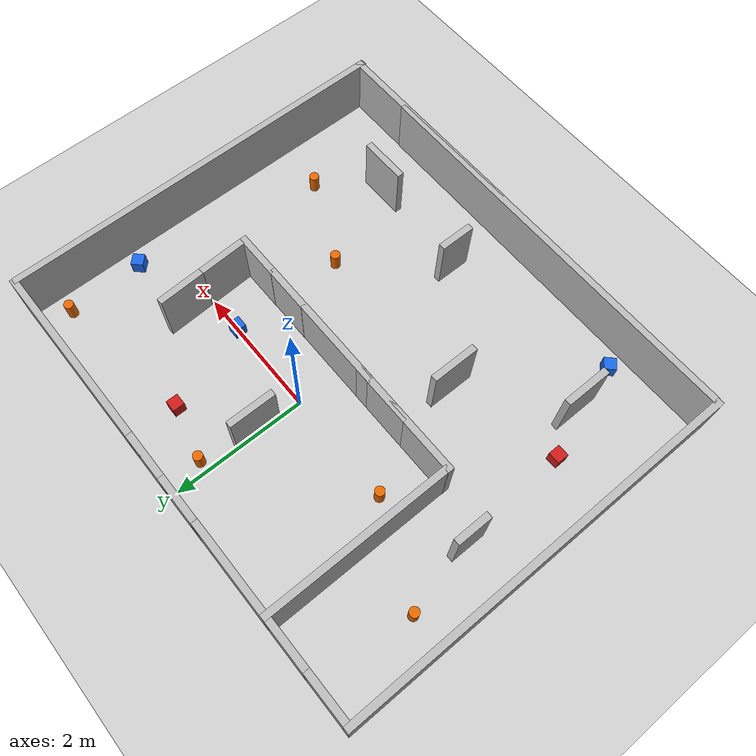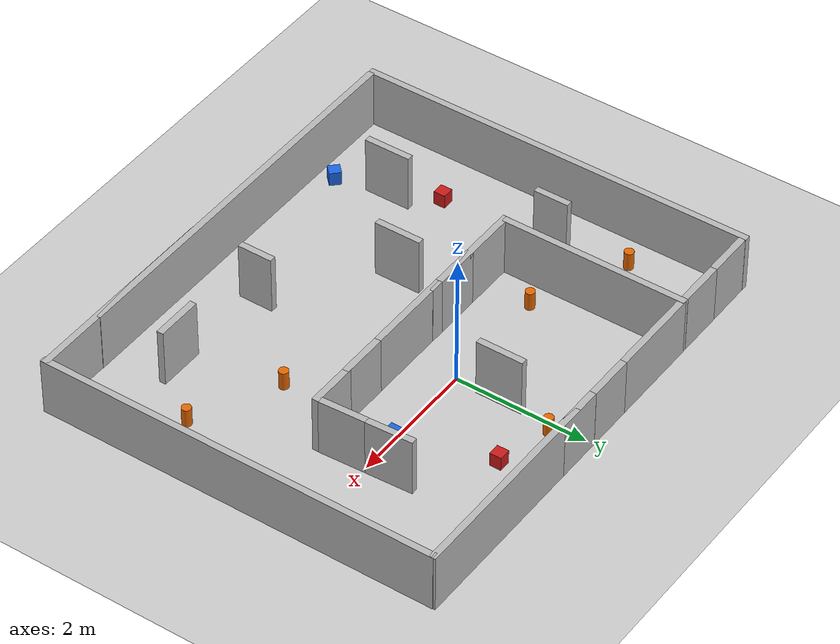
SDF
<sdf version="1.12">
 <world name="complex_maze">
  <physics name="1ms" type="ode">
   <max_step_size>0.001</max_step_size>
   <real_time_factor>1</real_time_factor>
   <real_time_update_rate>1000</real_time_update_rate>
   <max_contacts>20</max_contacts>
  </physics>
  <plugin name="gz::sim::systems::Physics" filename="gz-sim-physics-system"/>
  <plugin name="gz::sim::systems::UserCommands" filename="gz-sim-user-commands-system"/>
  <plugin name="gz::sim::systems::SceneBroadcaster" filename="gz-sim-scene-broadcaster-system"/>
  <plugin name="gz::sim::systems::Contact" filename="gz-sim-contact-system"/>
  <plugin name="gz::sim::systems::Sensors" filename="gz-sim-sensors-system">
   <render_engine>ogre2</render_engine>
  </plugin>
  <gravity>0 0 -9.8000000000000007</gravity>
  <magnetic_field>5.5644999999999998e-06 2.2875799999999999e-05 -4.2388400000000002e-05</magnetic_field>
  <atmosphere type="adiabatic"/>
  <scene>
   <ambient>0.400000006 0.400000006 0.400000006 1</ambient>
   <background>0.699999988 0.699999988 0.699999988 1</background>
   <shadows>true</shadows>
  </scene>
  <model name="ground_plane">
   <static>true</static>
   <link name="link">
    <collision name="collision">
     <geometry><plane><normal>0 0 1</normal><size>35.279999999999994 35.279999999999994</size></plane></geometry>
    </collision>
    <visual name="visual">
     <geometry><plane><normal>0 0 1</normal><size>35.279999999999994 35.279999999999994</size></plane></geometry>
     <material>
      <ambient>0.800000012 0.800000012 0.800000012 1</ambient>
      <diffuse>0.800000012 0.800000012 0.800000012 1</diffuse>
      <specular>0.800000012 0.800000012 0.800000012 1</specular>
     </material>
    </visual>
    <inertial>
     <mass>1</mass>
     <inertia><ixx>1</ixx><ixy>0</ixy><ixz>0</ixz><iyy>1</iyy><iyz>0</iyz><izz>1</izz></inertia>
    </inertial>
   </link>
  </model>
  <model name="wall_1">
   <static>true</static>
   <pose>-0.56639599800109863 -3.8974392414093018 0.44100001454353333 0 0 0</pose>
   <link name="link">
    <collision name="collision">
     <geometry><box><size>6.056 0.10000000000000001 0.88200000000000001</size></box></geometry>
    </collision>
    <visual name="visual">
     <geometry><box><size>6.056 0.10000000000000001 0.88200000000000001</size></box></geometry>
    </visual>
    <inertial>
     <mass>1</mass>
     <inertia><ixx>1</ixx><ixy>0</ixy><ixz>0</ixz><iyy>1</iyy><iyz>0</iyz><izz>1</izz></inertia>
    </inertial>
   </link>
  </model>
  <model name="wall_3">
   <static>true</static>
   <pose>-3.6227281093597412 -0.9127049446105957 0.44100001454353333 0 0 1.5708000357176291</pose>
   <link name="link">
    <collision name="collision">
     <geometry><box><size>6.056 0.10000000000000001 0.88200000000000001</size></box></geometry>
    </collision>
    <visual name="visual">
     <geometry><box><size>6.056 0.10000000000000001 0.88200000000000001</size></box></geometry>
    </visual>
    <inertial>
     <mass>1</mass>
     <inertia><ixx>1</ixx><ixy>0</ixy><ixz>0</ixz><iyy>1</iyy><iyz>0</iyz><izz>1</izz></inertia>
    </inertial>
   </link>
  </model>
  <model name="wall_4">
   <static>true</static>
   <pose>3.4836702346801758 -0.9444882869720459 0.44100001454353333 0 0 1.5708000357176291</pose>
   <link name="link">
    <collision name="collision">
     <geometry><box><size>6.056 0.10000000000000001 0.88200000000000001</size></box></geometry>
    </collision>
    <visual name="visual">
     <geometry><box><size>6.056 0.10000000000000001 0.88200000000000001</size></box></geometry>
    </visual>
    <inertial>
     <mass>1</mass>
     <inertia><ixx>1</ixx><ixy>0</ixy><ixz>0</ixz><iyy>1</iyy><iyz>0</iyz><izz>1</izz></inertia>
    </inertial>
   </link>
  </model>
  <model name="wall_5">
   <static>true</static>
   <pose>1.9448164701461792 -3.9030799865722656 0.44100001454353333 0 0 0</pose>
   <link name="link">
    <collision name="collision">
     <geometry><box><size>3.1752000000000002 0.10000000000000001 0.8819999999999999</size></box></geometry>
    </collision>
    <visual name="visual">
     <geometry><box><size>3.1752000000000002 0.10000000000000001 0.8819999999999999</size></box></geometry>
    </visual>
    <inertial>
     <mass>1</mass>
     <inertia><ixx>1</ixx><ixy>0</ixy><ixz>0</ixz><iyy>1</iyy><iyz>0</iyz><izz>1</izz></inertia>
    </inertial>
   </link>
  </model>
  <model name="wall_7">
   <static>true</static>
   <pose>-1.288527250289917 -0.70560002326965332 0.44100001454353333 0 0 0</pose>
   <link name="link">
    <collision name="collision">
     <geometry><box><size>1.7639999999999998 0.10000000000000001 0.8819999999999999</size></box></geometry>
    </collision>
    <visual name="visual">
     <geometry><box><size>1.7639999999999998 0.10000000000000001 0.8819999999999999</size></box></geometry>
    </visual>
    <inertial>
     <mass>1</mass>
     <inertia><ixx>1</ixx><ixy>0</ixy><ixz>0</ixz><iyy>1</iyy><iyz>0</iyz><izz>1</izz></inertia>
    </inertial>
   </link>
  </model>
  <model name="wall_8">
   <static>true</static>
   <pose>-0.97289999999999999 -0.7056 0.441 0 0 0</pose>
   <link name="link">
    <collision name="collision">
     <geometry><box><size>0.7056 0.10000000000000001 0.8819999999999999</size></box></geometry>
    </collision>
    <visual name="visual">
     <geometry><box><size>0.7056 0.10000000000000001 0.8819999999999999</size></box></geometry>
    </visual>
    <inertial>
     <mass>1</mass>
     <inertia><ixx>1</ixx><ixy>0</ixy><ixz>0</ixz><iyy>1</iyy><iyz>0</iyz><izz>1</izz></inertia>
    </inertial>
   </link>
  </model>
  <model name="wall_9">
   <static>true</static>
   <pose>1.1031 -0.7056 0.441 0 0 0</pose>
   <link name="link">
    <collision name="collision">
     <geometry><box><size>0.7056 0.10000000000000001 0.8819999999999999</size></box></geometry>
    </collision>
    <visual name="visual">
     <geometry><box><size>0.7056 0.10000000000000001 0.8819999999999999</size></box></geometry>
    </visual>
    <inertial>
     <mass>1</mass>
     <inertia><ixx>1</ixx><ixy>0</ixy><ixz>0</ixz><iyy>1</iyy><iyz>0</iyz><izz>1</izz></inertia>
    </inertial>
   </link>
  </model>
  <model name="wall_12">
   <static>true</static>
   <pose>-0.35850000381469727 2.0695314407348633 0.44100001454353333 0 0 0</pose>
   <link name="link">
    <collision name="collision">
     <geometry><box><size>0.7056 0.10000000000000001 0.8819999999999999</size></box></geometry>
    </collision>
    <visual name="visual">
     <geometry><box><size>0.7056 0.10000000000000001 0.8819999999999999</size></box></geometry>
    </visual>
    <inertial>
     <mass>1</mass>
     <inertia><ixx>1</ixx><ixy>0</ixy><ixz>0</ixz><iyy>1</iyy><iyz>0</iyz><izz>1</izz></inertia>
    </inertial>
   </link>
  </model>
  <model name="wall_16">
   <static>true</static>
   <pose>1.9404000043869019 2.0684654712677002 0.44100001454353333 0 0 0</pose>
   <link name="link">
    <collision name="collision">
     <geometry><box><size>3.1752000000000002 0.10000000000000001 0.8819999999999999</size></box></geometry>
    </collision>
    <visual name="visual">
     <geometry><box><size>3.1752000000000002 0.10000000000000001 0.8819999999999999</size></box></geometry>
    </visual>
    <inertial>
     <mass>1</mass>
     <inertia><ixx>1</ixx><ixy>0</ixy><ixz>0</ixz><iyy>1</iyy><iyz>0</iyz><izz>1</izz></inertia>
    </inertial>
   </link>
  </model>
  <model name="wall_17">
   <static>true</static>
   <pose>0.018981589004397392 0.69783550500869751 0.44100001454353333 0 0 1.5708000357176291</pose>
   <link name="link">
    <collision name="collision">
     <geometry><box><size>0.7056 0.10000000000000001 0.8819999999999999</size></box></geometry>
    </collision>
    <visual name="visual">
     <geometry><box><size>0.7056 0.10000000000000001 0.8819999999999999</size></box></geometry>
    </visual>
    <inertial>
     <mass>1</mass>
     <inertia><ixx>1</ixx><ixy>0</ixy><ixz>0</ixz><iyy>1</iyy><iyz>0</iyz><izz>1</izz></inertia>
    </inertial>
   </link>
  </model>
  <model name="wall_18">
   <static>true</static>
   <pose>-2.1168003082275391 0.70462048053741455 0.44100001454353333 0 0 1.5708000357176291</pose>
   <link name="link">
    <collision name="collision">
     <geometry><box><size>2.8224 0.10000000000000001 0.8819999999999999</size></box></geometry>
    </collision>
    <visual name="visual">
     <geometry><box><size>2.8224 0.10000000000000001 0.8819999999999999</size></box></geometry>
    </visual>
    <inertial>
     <mass>1</mass>
     <inertia><ixx>1</ixx><ixy>0</ixy><ixz>0</ixz><iyy>1</iyy><iyz>0</iyz><izz>1</izz></inertia>
    </inertial>
   </link>
  </model>
  <model name="wall_23">
   <static>true</static>
   <pose>0.056099999999999997 -0.70740000000000003 0.441 0 0 0</pose>
   <link name="link">
    <collision name="collision">
     <geometry><box><size>1.4112 0.10000000000000001 0.8819999999999999</size></box></geometry>
    </collision>
    <visual name="visual">
     <geometry><box><size>1.4112 0.10000000000000001 0.8819999999999999</size></box></geometry>
    </visual>
    <inertial>
     <mass>1</mass>
     <inertia><ixx>1</ixx><ixy>0</ixy><ixz>0</ixz><iyy>1</iyy><iyz>0</iyz><izz>1</izz></inertia>
    </inertial>
   </link>
  </model>
  <model name="wall_24">
   <static>true</static>
   <pose>-1.4111982583999634 2.0668833255767822 0.43754100799560547 0 0 3.1415900000000754</pose>
   <link name="link">
    <collision name="collision">
     <geometry><box><size>1.4112 0.10000000000000001 0.8819999999999999</size></box></geometry>
    </collision>
    <visual name="visual">
     <geometry><box><size>1.4112 0.10000000000000001 0.8819999999999999</size></box></geometry>
    </visual>
    <inertial>
     <mass>1</mass>
     <inertia><ixx>1</ixx><ixy>0</ixy><ixz>0</ixz><iyy>1</iyy><iyz>0</iyz><izz>1</izz></inertia>
    </inertial>
   </link>
  </model>
  <model name="wall_25">
   <static>true</static>
   <pose>-2.4235219955444336 -2.7799232006072998 0.43999999761581421 0 0 -1.5700000042340219</pose>
   <link name="link">
    <collision name="collision">
     <geometry><box><size>0.7056 0.10000000000000001 0.8819999999999999</size></box></geometry>
    </collision>
    <visual name="visual">
     <geometry><box><size>0.7056 0.10000000000000001 0.8819999999999999</size></box></geometry>
    </visual>
    <inertial>
     <mass>1</mass>
     <inertia><ixx>1</ixx><ixy>0</ixy><ixz>0</ixz><iyy>1</iyy><iyz>0</iyz><izz>1</izz></inertia>
    </inertial>
   </link>
  </model>
  <model name="wall_27">
   <static>true</static>
   <pose>-2.8587496280670166 -0.43311059474945068 0.44100001454353333 0 0 1.5708000357176291</pose>
   <link name="link">
    <collision name="collision">
     <geometry><box><size>0.5292 0.10000000000000001 0.8819999999999999</size></box></geometry>
    </collision>
    <visual name="visual">
     <geometry><box><size>0.5292 0.10000000000000001 0.8819999999999999</size></box></geometry>
    </visual>
    <inertial>
     <mass>1</mass>
     <inertia><ixx>1</ixx><ixy>0</ixy><ixz>0</ixz><iyy>1</iyy><iyz>0</iyz><izz>1</izz></inertia>
    </inertial>
   </link>
  </model>
  <model name="wall_29">
   <static>true</static>
   <pose>1.8915896415710449 -3.052030086517334 0.44100001454353333 0 0 0</pose>
   <link name="link">
    <collision name="collision">
     <geometry><box><size>0.7056 0.10000000000000001 0.8819999999999999</size></box></geometry>
    </collision>
    <visual name="visual">
     <geometry><box><size>0.7056 0.10000000000000001 0.8819999999999999</size></box></geometry>
    </visual>
    <inertial>
     <mass>1</mass>
     <inertia><ixx>1</ixx><ixy>0</ixy><ixz>0</ixz><iyy>1</iyy><iyz>0</iyz><izz>1</izz></inertia>
    </inertial>
   </link>
  </model>
  <model name="wall_30">
   <static>true</static>
   <pose>0.28096011281013489 -2.97780442237854 0.44100001454353333 0 0 1.5708000357176291</pose>
   <link name="link">
    <collision name="collision">
     <geometry><box><size>0.5292 0.10000000000000001 0.8819999999999999</size></box></geometry>
    </collision>
    <visual name="visual">
     <geometry><box><size>0.5292 0.10000000000000001 0.8819999999999999</size></box></geometry>
    </visual>
    <inertial>
     <mass>1</mass>
     <inertia><ixx>1</ixx><ixy>0</ixy><ixz>0</ixz><iyy>1</iyy><iyz>0</iyz><izz>1</izz></inertia>
    </inertial>
   </link>
  </model>
  <model name="wall_36">
   <static>true</static>
   <pose>-3.2237722873687744 2.0649557113647461 0.44100001454353333 0 0 0.0033400799915354476</pose>
   <link name="link">
    <collision name="collision">
     <geometry><box><size>0.7056 0.10000000000000001 0.8819999999999999</size></box></geometry>
    </collision>
    <visual name="visual">
     <geometry><box><size>0.7056 0.10000000000000001 0.8819999999999999</size></box></geometry>
    </visual>
    <inertial>
     <mass>1</mass>
     <inertia><ixx>1</ixx><ixy>0</ixy><ixz>0</ixz><iyy>1</iyy><iyz>0</iyz><izz>1</izz></inertia>
    </inertial>
   </link>
  </model>
  <model name="wall_38">
   <static>true</static>
   <pose>1.764 -0.70330000000000004 0.441 0 0 0</pose>
   <link name="link">
    <collision name="collision">
     <geometry><box><size>0.7056 0.10000000000000001 0.8819999999999999</size></box></geometry>
    </collision>
    <visual name="visual">
     <geometry><box><size>0.7056 0.10000000000000001 0.8819999999999999</size></box></geometry>
    </visual>
    <inertial>
     <mass>1</mass>
     <inertia><ixx>1</ixx><ixy>0</ixy><ixz>0</ixz><iyy>1</iyy><iyz>0</iyz><izz>1</izz></inertia>
    </inertial>
   </link>
  </model>
  <model name="wall_48">
   <static>true</static>
   <pose>2.0510344505310059 -0.309559166431427 0.44100001454353333 0 0 -1.5205199566366718</pose>
   <link name="link">
    <collision name="collision">
     <geometry><box><size>0.7056 0.10000000000000001 0.8819999999999999</size></box></geometry>
    </collision>
    <visual name="visual">
     <geometry><box><size>0.7056 0.10000000000000001 0.8819999999999999</size></box></geometry>
    </visual>
    <inertial>
     <mass>1</mass>
     <inertia><ixx>1</ixx><ixy>0</ixy><ixz>0</ixz><iyy>1</iyy><iyz>0</iyz><izz>1</izz></inertia>
    </inertial>
   </link>
  </model>
  <model name="wall_51">
   <static>true</static>
   <pose>-2.517780065536499 2.0668864250183105 0.44100001454353333 0 0 0</pose>
   <link name="link">
    <collision name="collision">
     <geometry><box><size>0.7056 0.10000000000000001 0.8819999999999999</size></box></geometry>
    </collision>
    <visual name="visual">
     <geometry><box><size>0.7056 0.10000000000000001 0.8819999999999999</size></box></geometry>
    </visual>
    <inertial>
     <mass>1</mass>
     <inertia><ixx>1</ixx><ixy>0</ixy><ixz>0</ixz><iyy>1</iyy><iyz>0</iyz><izz>1</izz></inertia>
    </inertial>
   </link>
  </model>
  <model name="wall_53">
   <static>true</static>
   <pose>-1.1197440624237061 -1.69361412525177 0.44100001454353333 0 0 1.5708000357176291</pose>
   <link name="link">
    <collision name="collision">
     <geometry><box><size>0.7056 0.10000000000000001 0.8819999999999999</size></box></geometry>
    </collision>
    <visual name="visual">
     <geometry><box><size>0.7056 0.10000000000000001 0.8819999999999999</size></box></geometry>
    </visual>
    <inertial>
     <mass>1</mass>
     <inertia><ixx>1</ixx><ixy>0</ixy><ixz>0</ixz><iyy>1</iyy><iyz>0</iyz><izz>1</izz></inertia>
    </inertial>
   </link>
  </model>
  <model name="wall_57">
   <static>true</static>
   <pose>0.34583199024200439 2.068758487701416 0.44100001454353333 0 0 0</pose>
   <link name="link">
    <collision name="collision">
     <geometry><box><size>0.7056 0.10000000000000001 0.8819999999999999</size></box></geometry>
    </collision>
    <visual name="visual">
     <geometry><box><size>0.7056 0.10000000000000001 0.8819999999999999</size></box></geometry>
    </visual>
    <inertial>
     <mass>1</mass>
     <inertia><ixx>1</ixx><ixy>0</ixy><ixz>0</ixz><iyy>1</iyy><iyz>0</iyz><izz>1</izz></inertia>
    </inertial>
   </link>
  </model>
  <model name="obstacle_cylinder_1">
   <static>true</static>
   <pose>-3.099663257598877 0.64014899730682373 0.14110000431537628 0 0 0</pose>
   <link name="link">
    <collision name="collision">
     <geometry>
      <cylinder><radius>0.070559999999999998</radius><length>0.28223999999999999</length></cylinder>
     </geometry>
    </collision>
    <visual name="visual">
     <geometry>
      <cylinder><radius>0.070559999999999998</radius><length>0.28223999999999999</length></cylinder>
     </geometry>
     <material>
      <ambient>0.899999976 0.400000006 0 1</ambient>
      <diffuse>0.899999976 0.400000006 0 1</diffuse>
      <specular>0.300000012 0.100000001 0 1</specular>
     </material>
    </visual>
    <inertial>
     <mass>1</mass>
     <inertia><ixx>1</ixx><ixy>0</ixy><ixz>0</ixz><iyy>1</iyy><iyz>0</iyz><izz>1</izz></inertia>
    </inertial>
   </link>
  </model>
  <model name="obstacle_cylinder_2">
   <static>true</static>
   <pose>1.3937400579452515 -1.7340946197509766 0.14110000431537628 0 0 0</pose>
   <link name="link">
    <collision name="collision">
     <geometry>
      <cylinder><radius>0.070559999999999998</radius><length>0.28223999999999999</length></cylinder>
     </geometry>
    </collision>
    <visual name="visual">
     <geometry>
      <cylinder><radius>0.070559999999999998</radius><length>0.28223999999999999</length></cylinder>
     </geometry>
     <material>
      <ambient>0.899999976 0.400000006 0 1</ambient>
      <diffuse>0.899999976 0.400000006 0 1</diffuse>
      <specular>0.300000012 0.100000001 0 1</specular>
     </material>
    </visual>
    <inertial>
     <mass>1</mass>
     <inertia><ixx>1</ixx><ixy>0</ixy><ixz>0</ixz><iyy>1</iyy><iyz>0</iyz><izz>1</izz></inertia>
    </inertial>
   </link>
  </model>
  <model name="obstacle_cylinder_3">
   <static>true</static>
   <pose>2.6582894325256348 -2.3384699821472168 0.14110000431537628 0 0 0</pose>
   <link name="link">
    <collision name="collision">
     <geometry>
      <cylinder><radius>0.070559999999999998</radius><length>0.28223999999999999</length></cylinder>
     </geometry>
    </collision>
    <visual name="visual">
     <geometry>
      <cylinder><radius>0.070559999999999998</radius><length>0.28223999999999999</length></cylinder>
     </geometry>
     <material>
      <ambient>0.899999976 0.400000006 0 1</ambient>
      <diffuse>0.899999976 0.400000006 0 1</diffuse>
      <specular>0.300000012 0.100000001 0 1</specular>
     </material>
    </visual>
    <inertial>
     <mass>1</mass>
     <inertia><ixx>1</ixx><ixy>0</ixy><ixz>0</ixz><iyy>1</iyy><iyz>0</iyz><izz>1</izz></inertia>
    </inertial>
   </link>
  </model>
  <model name="obstacle_cylinder_4">
   <static>true</static>
   <pose>3.1103000000000001 1.6516999999999999 0.1411 0 0 0</pose>
   <link name="link">
    <collision name="collision">
     <geometry>
      <cylinder><radius>0.070559999999999998</radius><length>0.28223999999999999</length></cylinder>
     </geometry>
    </collision>
    <visual name="visual">
     <geometry>
      <cylinder><radius>0.070559999999999998</radius><length>0.28223999999999999</length></cylinder>
     </geometry>
     <material>
      <ambient>0.899999976 0.400000006 0 1</ambient>
      <diffuse>0.899999976 0.400000006 0 1</diffuse>
      <specular>0.300000012 0.100000001 0 1</specular>
     </material>
    </visual>
    <inertial>
     <mass>1</mass>
     <inertia><ixx>1</ixx><ixy>0</ixy><ixz>0</ixz><iyy>1</iyy><iyz>0</iyz><izz>1</izz></inertia>
    </inertial>
   </link>
  </model>
  <model name="obstacle_cylinder_5">
   <static>true</static>
   <pose>-1.6917 0.0057000000000000002 0.1411 0 0 0</pose>
   <link name="link">
    <collision name="collision">
     <geometry>
      <cylinder><radius>0.070559999999999998</radius><length>0.28223999999999999</length></cylinder>
     </geometry>
    </collision>
    <visual name="visual">
     <geometry>
      <cylinder><radius>0.070559999999999998</radius><length>0.28223999999999999</length></cylinder>
     </geometry>
     <material>
      <ambient>0.899999976 0.400000006 0 1</ambient>
      <diffuse>0.899999976 0.400000006 0 1</diffuse>
      <specular>0.300000012 0.100000001 0 1</specular>
     </material>
    </visual>
    <inertial>
     <mass>1</mass>
     <inertia><ixx>1</ixx><ixy>0</ixy><ixz>0</ixz><iyy>1</iyy><iyz>0</iyz><izz>1</izz></inertia>
    </inertial>
   </link>
  </model>
  <model name="obstacle_cylinder_6">
   <static>true</static>
   <pose>0.15543800592422485 1.5264217853546143 0.14110000431537628 0 0 0</pose>
   <link name="link">
    <collision name="collision">
     <geometry>
      <cylinder><radius>0.070559999999999998</radius><length>0.28223999999999999</length></cylinder>
     </geometry>
    </collision>
    <visual name="visual">
     <geometry>
      <cylinder><radius>0.070559999999999998</radius><length>0.28223999999999999</length></cylinder>
     </geometry>
     <material>
      <ambient>0.899999976 0.400000006 0 1</ambient>
      <diffuse>0.899999976 0.400000006 0 1</diffuse>
      <specular>0.300000012 0.100000001 0 1</specular>
     </material>
    </visual>
    <inertial>
     <mass>1</mass>
     <inertia><ixx>1</ixx><ixy>0</ixy><ixz>0</ixz><iyy>1</iyy><iyz>0</iyz><izz>1</izz></inertia>
    </inertial>
   </link>
  </model>
  <model name="obstacle_box_2">
   <static>true</static>
   <pose>1.4112 0 0.10580000000000001 0 0 0</pose>
   <link name="link">
    <collision name="collision">
     <geometry><box><size>0.1764 0.1764 0.21167999999999998</size></box></geometry>
    </collision>
    <visual name="visual">
     <geometry><box><size>0.1764 0.1764 0.21167999999999998</size></box></geometry>
     <material>
      <ambient>0.100000001 0.400000006 0.899999976 1</ambient>
      <diffuse>0.100000001 0.400000006 0.899999976 1</diffuse>
      <specular>0.0500000007 0.100000001 0.300000012 1</specular>
     </material>
    </visual>
    <inertial>
     <mass>1</mass>
     <inertia><ixx>1</ixx><ixy>0</ixy><ixz>0</ixz><iyy>1</iyy><iyz>0</iyz><izz>1</izz></inertia>
    </inertial>
   </link>
  </model>
  <model name="obstacle_box_3">
   <static>true</static>
   <pose>-2.2811245918273926 -3.5855200290679932 0.10580000281333923 0 0 0.78500001420211862</pose>
   <link name="link">
    <collision name="collision">
     <geometry><box><size>0.1764 0.1764 0.21167999999999998</size></box></geometry>
    </collision>
    <visual name="visual">
     <geometry><box><size>0.1764 0.1764 0.21167999999999998</size></box></geometry>
     <material>
      <ambient>0.100000001 0.400000006 0.899999976 1</ambient>
      <diffuse>0.100000001 0.400000006 0.899999976 1</diffuse>
      <specular>0.0500000007 0.100000001 0.300000012 1</specular>
     </material>
    </visual>
    <inertial>
     <mass>1</mass>
     <inertia><ixx>1</ixx><ixy>0</ixy><ixz>0</ixz><iyy>1</iyy><iyz>0</iyz><izz>1</izz></inertia>
    </inertial>
   </link>
  </model>
  <model name="obstacle_box_4">
   <static>true</static>
   <pose>3.1563968658447266 0.48785009980201721 0.10580000281333923 0 0 0.78499999525300435</pose>
   <link name="link">
    <collision name="collision">
     <geometry><box><size>0.1764 0.1764 0.21167999999999998</size></box></geometry>
    </collision>
    <visual name="visual">
     <geometry><box><size>0.1764 0.1764 0.21167999999999998</size></box></geometry>
     <material>
      <ambient>0.100000001 0.400000006 0.899999976 1</ambient>
      <diffuse>0.100000001 0.400000006 0.899999976 1</diffuse>
      <specular>0.0500000007 0.100000001 0.300000012 1</specular>
     </material>
    </visual>
    <inertial>
     <mass>1</mass>
     <inertia><ixx>1</ixx><ixy>0</ixy><ixz>0</ixz><iyy>1</iyy><iyz>0</iyz><izz>1</izz></inertia>
    </inertial>
   </link>
  </model>
  <model name="obstacle_box_5">
   <static>true</static>
   <pose>-2.7616729736328125 -2.1261200904846191 0.10580000281333923 0 0 0</pose>
   <link name="link">
    <collision name="collision">
     <geometry><box><size>0.1764 0.1764 0.21167999999999998</size></box></geometry>
    </collision>
    <visual name="visual">
     <geometry><box><size>0.1764 0.1764 0.21167999999999998</size></box></geometry>
     <material>
      <ambient>0.800000012 0.100000001 0.100000001 1</ambient>
      <diffuse>0.800000012 0.100000001 0.100000001 1</diffuse>
      <specular>0.300000012 0.0500000007 0.0500000007 1</specular>
     </material>
    </visual>
    <inertial>
     <mass>1</mass>
     <inertia><ixx>1</ixx><ixy>0</ixy><ixz>0</ixz><iyy>1</iyy><iyz>0</iyz><izz>1</izz></inertia>
    </inertial>
   </link>
  </model>
  <model name="obstacle_box_5_1">
   <static>true</static>
   <pose>0.97915798425674438 1.3268264532089233 0.10580000281333923 0 0 0</pose>
   <link name="link">
    <collision name="collision">
     <geometry><box><size>0.1764 0.1764 0.21167999999999998</size></box></geometry>
    </collision>
    <visual name="visual">
     <geometry><box><size>0.1764 0.1764 0.21167999999999998</size></box></geometry>
     <material>
      <ambient>0.800000012 0.100000001 0.100000001 1</ambient>
      <diffuse>0.800000012 0.100000001 0.100000001 1</diffuse>
      <specular>0.300000012 0.0500000007 0.0500000007 1</specular>
     </material>
    </visual>
    <inertial>
     <mass>1</mass>
     <inertia><ixx>1</ixx><ixy>0</ixy><ixz>0</ixz><iyy>1</iyy><iyz>0</iyz><izz>1</izz></inertia>
    </inertial>
   </link>
  </model>
  <model name="wall_48_1">
   <static>true</static>
   <pose>2.0176490518313273 0.38791318286960141 0.44100001454353333 0 0 -1.5205199476770075</pose>
   <link name="link">
    <collision name="collision">
     <geometry><box><size>0.7056 0.10000000000000001 0.8819999999999999</size></box></geometry>
    </collision>
    <visual name="visual">
     <geometry><box><size>0.7056 0.10000000000000001 0.8819999999999999</size></box></geometry>
    </visual>
    <inertial>
     <mass>1</mass>
     <inertia><ixx>1</ixx><ixy>0</ixy><ixz>0</ixz><iyy>1</iyy><iyz>0</iyz><izz>1</izz></inertia>
    </inertial>
   </link>
  </model>
  <light name="sun" type="directional">
   <pose>0 0 3.528 0 0 0</pose>
   <intensity>1</intensity>
   <direction>-0.5 0.10000000000000001 -0.90000000000000002</direction>
   <diffuse>0.800000012 0.800000012 0.800000012 1</diffuse>
   <specular>0.200000003 0.200000003 0.200000003 1</specular>
   <attenuation>
    <range>1000</range>
    <linear>0.0099999997764825821</linear>
    <constant>0.89999997615814209</constant>
    <quadratic>0.0010000000474974513</quadratic>
   </attenuation>
   <spot><inner_angle>0</inner_angle><outer_angle>0</outer_angle><falloff>0</falloff></spot>
  </light>
 </world>
</sdf>
